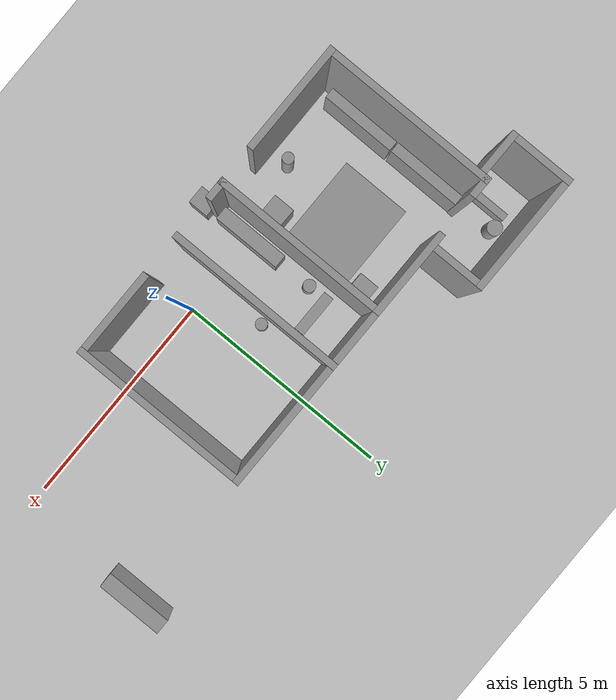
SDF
<sdf version="1.6">
 <world name="default">
  <model name="ground_plane">
   <static>1</static>
   <link name="link">
    <collision name="collision">
     <geometry><plane><normal>0 0 1</normal><size>100 100</size></plane></geometry>
     <surface><friction><ode><mu>100</mu><mu2>50</mu2></ode></friction></surface>
    </collision>
    <visual name="visual">
     <cast_shadows>0</cast_shadows>
     <geometry><plane><normal>0 0 1</normal><size>100 100</size></plane></geometry>
     <material>
      <script><uri>file://media/materials/scripts/gazebo.material</uri><name>Gazebo/Grey</name></script>
     </material>
    </visual>
   </link>
  </model>
  <model name="cma_escritorio">
   <pose>-1.8304 1.03024 0 0 -0 0</pose>
   <link name="Wall_11">
    <collision name="Wall_11_Collision">
     <geometry><box><size>2 0.15 2.5</size></box></geometry>
     <pose>0 0 1.25 0 -0 0</pose>
    </collision>
    <visual name="Wall_11_Visual">
     <pose>0 0 1.25 0 -0 0</pose>
     <geometry><box><size>2 0.15 2.5</size></box></geometry>
     <material>
      <script><uri>file://media/materials/scripts/gazebo.material</uri><name>Gazebo/Grey</name></script>
      <ambient>1 1 1 1</ambient>
     </material>
    </visual>
    <pose>-1.4 1.93 0 0 -0 3.14159</pose>
   </link>
   <link name="Wall_2">
    <collision name="Wall_2_Collision">
     <geometry><box><size>4 0.15 2.5</size></box></geometry>
     <pose>0 0 1.25 0 -0 0</pose>
    </collision>
    <visual name="Wall_2_Visual">
     <pose>0 0 1.25 0 -0 0</pose>
     <geometry><box><size>4 0.15 2.5</size></box></geometry>
     <material>
      <script><uri>file://media/materials/scripts/gazebo.material</uri><name>Gazebo/Grey</name></script>
      <ambient>1 1 1 1</ambient>
     </material>
    </visual>
    <pose>0.875 0.005 0 0 -0 1.5708</pose>
   </link>
   <link name="Wall_25">
    <collision name="Wall_25_Collision">
     <geometry><box><size>2.5 0.15 2.5</size></box></geometry>
     <pose>0 0 1.25 0 -0 0</pose>
    </collision>
    <visual name="Wall_25_Visual">
     <pose>0 0 1.25 0 -0 0</pose>
     <geometry><box><size>2.5 0.15 2.5</size></box></geometry>
     <material>
      <script><uri>file://media/materials/scripts/gazebo.material</uri><name>Gazebo/Grey</name></script>
      <ambient>1 1 1 1</ambient>
     </material>
    </visual>
    <pose>-2.55 -1.93 0 0 -0 3.14159</pose>
   </link>
   <link name="Wall_26">
    <collision name="Wall_26_Collision">
     <geometry><box><size>4 0.15 2.5</size></box></geometry>
     <pose>0 0 1.25 0 -0 0</pose>
    </collision>
    <visual name="Wall_26_Visual">
     <pose>0 0 1.25 0 -0 0</pose>
     <geometry><box><size>4 0.15 2.5</size></box></geometry>
     <material>
      <script><uri>file://media/materials/scripts/gazebo.material</uri><name>Gazebo/Grey</name></script>
      <ambient>1 1 1 1</ambient>
     </material>
    </visual>
    <pose>-3.725 -0.005 0 0 -0 1.5708</pose>
   </link>
   <link name="Wall_27">
    <collision name="Wall_27_Collision">
     <geometry><box><size>0.5 0.15 2.5</size></box></geometry>
     <pose>0 0 1.25 0 -0 0</pose>
    </collision>
    <visual name="Wall_27_Visual">
     <pose>0 0 1.25 0 -0 0</pose>
     <geometry><box><size>0.5 0.15 2.5</size></box></geometry>
     <material>
      <script><uri>file://media/materials/scripts/gazebo.material</uri><name>Gazebo/Grey</name></script>
      <ambient>1 1 1 1</ambient>
     </material>
    </visual>
    <pose>-3.55 1.92 0 0 -0 0</pose>
   </link>
   <link name="Wall_3">
    <collision name="Wall_3_Collision">
     <geometry><box><size>3 0.15 2.5</size></box></geometry>
     <pose>0 0 1.25 0 -0 0</pose>
    </collision>
    <visual name="Wall_3_Visual">
     <pose>0 0 1.25 0 -0 0</pose>
     <geometry><box><size>3 0.15 2.5</size></box></geometry>
     <material>
      <script><uri>file://media/materials/scripts/gazebo.material</uri><name>Gazebo/Grey</name></script>
      <ambient>1 1 1 1</ambient>
     </material>
    </visual>
    <pose>2.3 1.93 0 0 -0 0</pose>
   </link>
   <link name="Wall_4">
    <collision name="Wall_4_Collision">
     <geometry><box><size>4 0.15 2.5</size></box></geometry>
     <pose>0 0 1.25 0 -0 0</pose>
    </collision>
    <visual name="Wall_4_Visual">
     <pose>0 0 1.25 0 -0 0</pose>
     <geometry><box><size>4 0.15 2.5</size></box></geometry>
     <material>
      <script><uri>file://media/materials/scripts/gazebo.material</uri><name>Gazebo/Grey</name></script>
      <ambient>1 1 1 1</ambient>
     </material>
    </visual>
    <pose>3.725 0.005 0 0 0 -1.5708</pose>
   </link>
   <link name="Wall_5">
    <collision name="Wall_5_Collision">
     <geometry><box><size>2 0.15 2.5</size></box></geometry>
     <pose>0 0 1.25 0 -0 0</pose>
    </collision>
    <visual name="Wall_5_Visual">
     <pose>0 0 1.25 0 -0 0</pose>
     <geometry><box><size>2 0.15 2.5</size></box></geometry>
     <material>
      <script><uri>file://media/materials/scripts/gazebo.material</uri><name>Gazebo/Grey</name></script>
      <ambient>1 1 1 1</ambient>
     </material>
    </visual>
    <pose>2.8 -1.92 0 0 -0 3.14159</pose>
   </link>
   <link name="Wall_7">
    <collision name="Wall_7_Collision">
     <geometry><box><size>1.5 0.15 2.5</size></box></geometry>
     <pose>0 0 1.25 0 -0 0</pose>
    </collision>
    <visual name="Wall_7_Visual">
     <pose>0 0 1.25 0 -0 0</pose>
     <geometry><box><size>1.5 0.15 2.5</size></box></geometry>
     <material>
      <script><uri>file://media/materials/scripts/gazebo.material</uri><name>Gazebo/Grey</name></script>
      <ambient>1 1 1 1</ambient>
     </material>
    </visual>
    <pose>0.2 1.93 0 0 -0 3.14159</pose>
   </link>
   <link name="Wall_8">
    <collision name="Wall_8_Collision">
     <geometry><box><size>4 0.15 2.5</size></box></geometry>
     <pose>0 0 1.25 0 -0 0</pose>
    </collision>
    <visual name="Wall_8_Visual">
     <pose>0 0 1.25 0 -0 0</pose>
     <geometry><box><size>4 0.15 2.5</size></box></geometry>
     <material>
      <script><uri>file://media/materials/scripts/gazebo.material</uri><name>Gazebo/Grey</name></script>
      <ambient>1 1 1 1</ambient>
     </material>
    </visual>
    <pose>-0.475 0.005 0 0 0 -1.5708</pose>
   </link>
   <link name="Wall_9">
    <collision name="Wall_9_Collision">
     <geometry><box><size>0.5 0.15 2.5</size></box></geometry>
     <pose>0 0 1.25 0 -0 0</pose>
    </collision>
    <visual name="Wall_9_Visual">
     <pose>0 0 1.25 0 -0 0</pose>
     <geometry><box><size>0.5 0.15 2.5</size></box></geometry>
     <material>
      <script><uri>file://media/materials/scripts/gazebo.material</uri><name>Gazebo/Grey</name></script>
      <ambient>1 1 1 1</ambient>
     </material>
    </visual>
    <pose>-0.3 -1.92 0 0 -0 0</pose>
   </link>
   <static>1</static>
  </model>
  <model name="cma_banheiro">
   <pose>-5.22928 3.4871 0 0 -0 0</pose>
   <link name="Wall_0">
    <collision name="Wall_0_Collision">
     <geometry><box><size>1 0.15 2.5</size></box></geometry>
     <pose>0 0 1.25 0 -0 0</pose>
    </collision>
    <visual name="Wall_0_Visual">
     <pose>0 0 1.25 0 -0 0</pose>
     <geometry><box><size>1 0.15 2.5</size></box></geometry>
     <material>
      <script><uri>file://media/materials/scripts/gazebo.material</uri><name>Gazebo/Grey</name></script>
      <ambient>1 1 1 1</ambient>
     </material>
    </visual>
    <pose>-0.875 -0.675 0 0 -0 3.14159</pose>
   </link>
   <link name="Wall_1">
    <collision name="Wall_1_Collision">
     <geometry><box><size>1.5 0.15 2.5</size></box></geometry>
     <pose>0 0 1.25 0 -0 0</pose>
    </collision>
    <visual name="Wall_1_Visual">
     <pose>0 0 1.25 0 -0 0</pose>
     <geometry><box><size>1.5 0.15 2.5</size></box></geometry>
     <material>
      <script><uri>file://media/materials/scripts/gazebo.material</uri><name>Gazebo/Grey</name></script>
      <ambient>1 1 1 1</ambient>
     </material>
    </visual>
    <pose>-1.3 0 0 0 -0 1.5708</pose>
   </link>
   <link name="Wall_2">
    <collision name="Wall_2_Collision">
     <geometry><box><size>2.75 0.15 2.5</size></box></geometry>
     <pose>0 0 1.25 0 -0 0</pose>
    </collision>
    <visual name="Wall_2_Visual">
     <pose>0 0 1.25 0 -0 0</pose>
     <geometry><box><size>2.75 0.15 2.5</size></box></geometry>
     <material>
      <script><uri>file://media/materials/scripts/gazebo.material</uri><name>Gazebo/Grey</name></script>
      <ambient>1 1 1 1</ambient>
     </material>
    </visual>
    <pose>0 0.675 0 0 -0 0</pose>
   </link>
   <link name="Wall_4">
    <collision name="Wall_4_Collision">
     <geometry><box><size>1.25 0.15 2.5</size></box></geometry>
     <pose>0 0 1.25 0 -0 0</pose>
    </collision>
    <visual name="Wall_4_Visual">
     <pose>0 0 1.25 0 -0 0</pose>
     <geometry><box><size>1.25 0.15 2.5</size></box></geometry>
     <material>
      <script><uri>file://media/materials/scripts/gazebo.material</uri><name>Gazebo/Grey</name></script>
      <ambient>1 1 1 1</ambient>
     </material>
    </visual>
    <pose>1.3 0.125 0 0 0 -1.5708</pose>
   </link>
   <static>1</static>
  </model>
  <model name="cma_lixo_0">
   <link name="link_1">
    <pose>0.882962 1.81586 0.5 0 -0 0</pose>
    <inertial>
     <mass>0.0687644</mass>
     <inertia>
      <ixx>0.00602588</ixx>
      <ixy>0</ixy>
      <ixz>0</ixz>
      <iyy>0.00602588</iyy>
      <iyz>0</iyz>
      <izz>0.000591068</izz>
     </inertia>
    </inertial>
    <visual name="visual">
     <geometry><cylinder><radius>0.131112</radius><length>1</length></cylinder></geometry>
     <material>
      <lighting>1</lighting>
      <script><uri>file://media/materials/scripts/gazebo.material</uri><name>Gazebo/Grey</name></script>
      <ambient>0.3 0.3 0.3 1</ambient>
      <diffuse>0.7 0.7 0.7 1</diffuse>
      <specular>0.01 0.01 0.01 1</specular>
      <emissive>0 0 0 1</emissive>
     </material>
    </visual>
    <collision name="collision">
     <geometry><cylinder><radius>0.131112</radius><length>1</length></cylinder></geometry>
     <surface>
      <friction>
       <ode><mu>1</mu><mu2>1</mu2><fdir1>0 0 0</fdir1><slip1>0</slip1><slip2>0</slip2></ode>
       <torsional>
        <coefficient>1</coefficient>
        <patch_radius>0</patch_radius>
        <surface_radius>0</surface_radius>
        <use_patch_radius>1</use_patch_radius>
        <ode><slip>0</slip></ode>
       </torsional>
      </friction>
      <bounce><restitution_coefficient>0</restitution_coefficient><threshold>1e+06</threshold></bounce>
      <contact>
       <collide_without_contact>0</collide_without_contact>
       <collide_without_contact_bitmask>1</collide_without_contact_bitmask>
       <collide_bitmask>1</collide_bitmask>
       <ode>
        <soft_cfm>0</soft_cfm>
        <soft_erp>0.2</soft_erp>
        <kp>1e+13</kp>
        <kd>1</kd>
        <max_vel>0.01</max_vel>
        <min_depth>0</min_depth>
       </ode>
       <bullet>
        <split_impulse>1</split_impulse>
        <split_impulse_penetration_threshold>-0.01</split_impulse_penetration_threshold>
        <soft_cfm>0</soft_cfm>
        <soft_erp>0.2</soft_erp>
        <kp>1e+13</kp>
        <kd>1</kd>
       </bullet>
      </contact>
     </surface>
    </collision>
   </link>
   <static>0</static>
   <pose>-1.60935 -0.442731 -2e-06 0 0 -0.009777</pose>
  </model>
  <model name="cma_bau_s">
   <link name="link_1">
    <pose>0.109594 0.272293 0 0 -0 0</pose>
    <inertial>
     <mass>0.125479</mass>
     <inertia>
      <ixx>0.00641943</ixx>
      <ixy>0</ixy>
      <ixz>0</ixz>
      <iyy>0.0059754</iyy>
      <iyz>0</iyz>
      <izz>0.00422085</izz>
     </inertia>
    </inertial>
    <visual name="visual">
     <geometry><box><size>0.424964 0.472283 0.625118</size></box></geometry>
     <material>
      <lighting>1</lighting>
      <script><uri>file://media/materials/scripts/gazebo.material</uri><name>Gazebo/Grey</name></script>
      <ambient>0.3 0.3 0.3 1</ambient>
      <diffuse>0.7 0.7 0.7 1</diffuse>
      <specular>0.01 0.01 0.01 1</specular>
      <emissive>0 0 0 1</emissive>
     </material>
    </visual>
    <collision name="collision">
     <geometry><box><size>0.424964 0.472283 0.625118</size></box></geometry>
     <surface>
      <friction>
       <ode><mu>1</mu><mu2>1</mu2><fdir1>0 0 0</fdir1><slip1>0</slip1><slip2>0</slip2></ode>
       <torsional>
        <coefficient>1</coefficient>
        <patch_radius>0</patch_radius>
        <surface_radius>0</surface_radius>
        <use_patch_radius>1</use_patch_radius>
        <ode><slip>0</slip></ode>
       </torsional>
      </friction>
      <bounce><restitution_coefficient>0</restitution_coefficient><threshold>1e+06</threshold></bounce>
      <contact>
       <collide_without_contact>0</collide_without_contact>
       <collide_without_contact_bitmask>1</collide_without_contact_bitmask>
       <collide_bitmask>1</collide_bitmask>
       <ode>
        <soft_cfm>0</soft_cfm>
        <soft_erp>0.2</soft_erp>
        <kp>1e+13</kp>
        <kd>1</kd>
        <max_vel>0.01</max_vel>
        <min_depth>0</min_depth>
       </ode>
       <bullet>
        <split_impulse>1</split_impulse>
        <split_impulse_penetration_threshold>-0.01</split_impulse_penetration_threshold>
        <soft_cfm>0</soft_cfm>
        <soft_erp>0.2</soft_erp>
        <kp>1e+13</kp>
        <kd>1</kd>
       </bullet>
      </contact>
     </surface>
    </collision>
   </link>
   <static>0</static>
   <pose>-2.04311 -1.48559 0.312559 0 0 -0.000251</pose>
  </model>
  <model name="cma_cama_c_0">
   <link name="link_0">
    <pose>5e-06 -4e-06 0 0 -0 0</pose>
    <inertial>
     <mass>3.18358</mass>
     <inertia><ixx>0.934862</ixx><ixy>0</ixy><ixz>0</ixz><iyy>1.33069</iyy><iyz>0</iyz><izz>1.73496</izz></inertia>
    </inertial>
    <visual name="visual">
     <geometry><box><size>2.00394 1.58866 1</size></box></geometry>
     <material>
      <lighting>1</lighting>
      <script><uri>file://media/materials/scripts/gazebo.material</uri><name>Gazebo/Grey</name></script>
      <ambient>0.3 0.3 0.3 1</ambient>
      <diffuse>0.7 0.7 0.7 1</diffuse>
      <specular>0.01 0.01 0.01 1</specular>
      <emissive>0 0 0 1</emissive>
     </material>
    </visual>
    <collision name="collision">
     <geometry><box><size>2.00394 1.58866 1</size></box></geometry>
     <surface>
      <friction>
       <ode><mu>1</mu><mu2>1</mu2><fdir1>0 0 0</fdir1><slip1>0</slip1><slip2>0</slip2></ode>
       <torsional>
        <coefficient>1</coefficient>
        <patch_radius>0</patch_radius>
        <surface_radius>0</surface_radius>
        <use_patch_radius>1</use_patch_radius>
        <ode><slip>0</slip></ode>
       </torsional>
      </friction>
      <bounce><restitution_coefficient>0</restitution_coefficient><threshold>1e+06</threshold></bounce>
      <contact>
       <collide_without_contact>0</collide_without_contact>
       <collide_without_contact_bitmask>1</collide_without_contact_bitmask>
       <collide_bitmask>1</collide_bitmask>
       <ode>
        <soft_cfm>0</soft_cfm>
        <soft_erp>0.2</soft_erp>
        <kp>1e+13</kp>
        <kd>1</kd>
        <max_vel>0.01</max_vel>
        <min_depth>0</min_depth>
       </ode>
       <bullet>
        <split_impulse>1</split_impulse>
        <split_impulse_penetration_threshold>-0.01</split_impulse_penetration_threshold>
        <soft_cfm>0</soft_cfm>
        <soft_erp>0.2</soft_erp>
        <kp>1e+13</kp>
        <kd>1</kd>
       </bullet>
      </contact>
     </surface>
    </collision>
   </link>
   <static>0</static>
   <pose>-3.38238 1.38787 0.5 0 0 -2e-06</pose>
  </model>
  <model name="cma_bau_s_0">
   <link name="link_1">
    <pose>0.109594 0.272293 0 0 -0 0</pose>
    <inertial>
     <mass>0.125479</mass>
     <inertia>
      <ixx>0.00641943</ixx>
      <ixy>0</ixy>
      <ixz>0</ixz>
      <iyy>0.0059754</iyy>
      <iyz>0</iyz>
      <izz>0.00422085</izz>
     </inertia>
    </inertial>
    <visual name="visual">
     <geometry><box><size>0.424964 0.472283 0.625118</size></box></geometry>
     <material>
      <lighting>1</lighting>
      <script><uri>file://media/materials/scripts/gazebo.material</uri><name>Gazebo/Grey</name></script>
      <ambient>0.3 0.3 0.3 1</ambient>
      <diffuse>0.7 0.7 0.7 1</diffuse>
      <specular>0.01 0.01 0.01 1</specular>
      <emissive>0 0 0 1</emissive>
     </material>
    </visual>
    <collision name="collision">
     <geometry><box><size>0.424964 0.472283 0.625118</size></box></geometry>
     <surface>
      <friction>
       <ode><mu>1</mu><mu2>1</mu2><fdir1>0 0 0</fdir1><slip1>0</slip1><slip2>0</slip2></ode>
       <torsional>
        <coefficient>1</coefficient>
        <patch_radius>0</patch_radius>
        <surface_radius>0</surface_radius>
        <use_patch_radius>1</use_patch_radius>
        <ode><slip>0</slip></ode>
       </torsional>
      </friction>
      <bounce><restitution_coefficient>0</restitution_coefficient><threshold>1e+06</threshold></bounce>
      <contact>
       <collide_without_contact>0</collide_without_contact>
       <collide_without_contact_bitmask>1</collide_without_contact_bitmask>
       <collide_bitmask>1</collide_bitmask>
       <ode>
        <soft_cfm>0</soft_cfm>
        <soft_erp>0.2</soft_erp>
        <kp>1e+13</kp>
        <kd>1</kd>
        <max_vel>0.01</max_vel>
        <min_depth>0</min_depth>
       </ode>
       <bullet>
        <split_impulse>1</split_impulse>
        <split_impulse_penetration_threshold>-0.01</split_impulse_penetration_threshold>
        <soft_cfm>0</soft_cfm>
        <soft_erp>0.2</soft_erp>
        <kp>1e+13</kp>
        <kd>1</kd>
       </bullet>
      </contact>
     </surface>
    </collision>
   </link>
   <static>0</static>
   <pose>-2.76549 2.24311 0.312559 3e-06 -0 -0.002092</pose>
  </model>
  <model name="cma_gaveteiro_1">
   <link name="link_0">
    <pose>-0 4e-06 0 0 -0 0</pose>
    <inertial>
     <mass>0.245086</mass>
     <inertia>
      <ixx>0.025418</ixx>
      <ixy>0</ixy>
      <ixz>0</ixz>
      <iyy>0.0254411</iyy>
      <iyz>0</iyz>
      <izz>0.0100113</izz>
     </inertia>
    </inertial>
    <visual name="visual">
     <geometry><box><size>0.495657 0.494491 1</size></box></geometry>
     <material>
      <lighting>1</lighting>
      <script><uri>file://media/materials/scripts/gazebo.material</uri><name>Gazebo/Grey</name></script>
      <ambient>0.3 0.3 0.3 1</ambient>
      <diffuse>0.7 0.7 0.7 1</diffuse>
      <specular>0.01 0.01 0.01 1</specular>
      <emissive>0 0 0 1</emissive>
     </material>
    </visual>
    <collision name="collision">
     <geometry><box><size>0.495657 0.494491 1</size></box></geometry>
     <surface>
      <friction>
       <ode><mu>1</mu><mu2>1</mu2><fdir1>0 0 0</fdir1><slip1>0</slip1><slip2>0</slip2></ode>
       <torsional>
        <coefficient>1</coefficient>
        <patch_radius>0</patch_radius>
        <surface_radius>0</surface_radius>
        <use_patch_radius>1</use_patch_radius>
        <ode><slip>0</slip></ode>
       </torsional>
      </friction>
      <bounce><restitution_coefficient>0</restitution_coefficient><threshold>1e+06</threshold></bounce>
      <contact>
       <collide_without_contact>0</collide_without_contact>
       <collide_without_contact_bitmask>1</collide_without_contact_bitmask>
       <collide_bitmask>1</collide_bitmask>
       <ode>
        <soft_cfm>0</soft_cfm>
        <soft_erp>0.2</soft_erp>
        <kp>1e+13</kp>
        <kd>1</kd>
        <max_vel>0.01</max_vel>
        <min_depth>0</min_depth>
       </ode>
       <bullet>
        <split_impulse>1</split_impulse>
        <split_impulse_penetration_threshold>-0.01</split_impulse_penetration_threshold>
        <soft_cfm>0</soft_cfm>
        <soft_erp>0.2</soft_erp>
        <kp>1e+13</kp>
        <kd>1</kd>
       </bullet>
      </contact>
     </surface>
    </collision>
   </link>
   <static>0</static>
   <pose>-2.68858 0.131642 0.500001 -5e-06 -0 -0.001534</pose>
  </model>
  <model name="cma_armario_6">
   <link name="link_0">
    <pose>1.32157 0.885178 0.5 0 -0 0</pose>
    <inertial>
     <mass>0.402376</mass>
     <inertia>
      <ixx>0.0353686</ixx>
      <ixy>0</ixy>
      <ixz>0</ixz>
      <iyy>0.132616</iyy>
      <iyz>0</iyz>
      <izz>0.100922</izz>
     </inertia>
    </inertial>
    <visual name="visual">
     <geometry><box><size>1.71877 0.234069 1</size></box></geometry>
     <material>
      <lighting>1</lighting>
      <script><uri>file://media/materials/scripts/gazebo.material</uri><name>Gazebo/Grey</name></script>
      <ambient>0.3 0.3 0.3 1</ambient>
      <diffuse>0.7 0.7 0.7 1</diffuse>
      <specular>0.01 0.01 0.01 1</specular>
      <emissive>0 0 0 1</emissive>
     </material>
    </visual>
    <collision name="collision">
     <geometry><box><size>1.71877 0.234069 1</size></box></geometry>
     <surface>
      <friction>
       <ode><mu>1</mu><mu2>1</mu2><fdir1>0 0 0</fdir1><slip1>0</slip1><slip2>0</slip2></ode>
       <torsional>
        <coefficient>1</coefficient>
        <patch_radius>0</patch_radius>
        <surface_radius>0</surface_radius>
        <use_patch_radius>1</use_patch_radius>
        <ode><slip>0</slip></ode>
       </torsional>
      </friction>
      <bounce><restitution_coefficient>0</restitution_coefficient><threshold>1e+06</threshold></bounce>
      <contact>
       <collide_without_contact>0</collide_without_contact>
       <collide_without_contact_bitmask>1</collide_without_contact_bitmask>
       <collide_bitmask>1</collide_bitmask>
       <ode>
        <soft_cfm>0</soft_cfm>
        <soft_erp>0.2</soft_erp>
        <kp>1e+13</kp>
        <kd>1</kd>
        <max_vel>0.01</max_vel>
        <min_depth>0</min_depth>
       </ode>
       <bullet>
        <split_impulse>1</split_impulse>
        <split_impulse_penetration_threshold>-0.01</split_impulse_penetration_threshold>
        <soft_cfm>0</soft_cfm>
        <soft_erp>0.2</soft_erp>
        <kp>1e+13</kp>
        <kd>1</kd>
       </bullet>
      </contact>
     </surface>
    </collision>
   </link>
   <static>0</static>
   <pose>-4.38103 0.68863 -2e-06 2e-06 -0 1.56776</pose>
  </model>
  <model name="cma_armario_7">
   <link name="link_0">
    <pose>1.32157 0.885178 0.5 0 -0 0</pose>
    <inertial>
     <mass>0.402376</mass>
     <inertia>
      <ixx>0.0353686</ixx>
      <ixy>0</ixy>
      <ixz>0</ixz>
      <iyy>0.132616</iyy>
      <iyz>0</iyz>
      <izz>0.100922</izz>
     </inertia>
    </inertial>
    <visual name="visual">
     <geometry><box><size>1.71877 0.234069 1</size></box></geometry>
     <material>
      <lighting>1</lighting>
      <script><uri>file://media/materials/scripts/gazebo.material</uri><name>Gazebo/Grey</name></script>
      <ambient>0.3 0.3 0.3 1</ambient>
      <diffuse>0.7 0.7 0.7 1</diffuse>
      <specular>0.01 0.01 0.01 1</specular>
      <emissive>0 0 0 1</emissive>
     </material>
    </visual>
    <collision name="collision">
     <geometry><box><size>1.71877 0.234069 1</size></box></geometry>
     <surface>
      <friction>
       <ode><mu>1</mu><mu2>1</mu2><fdir1>0 0 0</fdir1><slip1>0</slip1><slip2>0</slip2></ode>
       <torsional>
        <coefficient>1</coefficient>
        <patch_radius>0</patch_radius>
        <surface_radius>0</surface_radius>
        <use_patch_radius>1</use_patch_radius>
        <ode><slip>0</slip></ode>
       </torsional>
      </friction>
      <bounce><restitution_coefficient>0</restitution_coefficient><threshold>1e+06</threshold></bounce>
      <contact>
       <collide_without_contact>0</collide_without_contact>
       <collide_without_contact_bitmask>1</collide_without_contact_bitmask>
       <collide_bitmask>1</collide_bitmask>
       <ode>
        <soft_cfm>0</soft_cfm>
        <soft_erp>0.2</soft_erp>
        <kp>1e+13</kp>
        <kd>1</kd>
        <max_vel>0.01</max_vel>
        <min_depth>0</min_depth>
       </ode>
       <bullet>
        <split_impulse>1</split_impulse>
        <split_impulse_penetration_threshold>-0.01</split_impulse_penetration_threshold>
        <soft_cfm>0</soft_cfm>
        <soft_erp>0.2</soft_erp>
        <kp>1e+13</kp>
        <kd>1</kd>
       </bullet>
      </contact>
     </surface>
    </collision>
   </link>
   <static>0</static>
   <pose>-4.38716 -1.06802 -2e-06 2e-06 -0 1.56482</pose>
  </model>
  <model name="cma_lixo_3">
   <link name="link_1">
    <pose>0.882962 1.81586 0.5 0 -0 0</pose>
    <inertial>
     <mass>0.0687644</mass>
     <inertia>
      <ixx>0.00602588</ixx>
      <ixy>0</ixy>
      <ixz>0</ixz>
      <iyy>0.00602588</iyy>
      <iyz>0</iyz>
      <izz>0.000591068</izz>
     </inertia>
    </inertial>
    <visual name="visual">
     <geometry><cylinder><radius>0.131112</radius><length>1</length></cylinder></geometry>
     <material>
      <lighting>1</lighting>
      <script><uri>file://media/materials/scripts/gazebo.material</uri><name>Gazebo/Grey</name></script>
      <ambient>0.3 0.3 0.3 1</ambient>
      <diffuse>0.7 0.7 0.7 1</diffuse>
      <specular>0.01 0.01 0.01 1</specular>
      <emissive>0 0 0 1</emissive>
     </material>
    </visual>
    <collision name="collision">
     <geometry><cylinder><radius>0.131112</radius><length>1</length></cylinder></geometry>
     <surface>
      <friction>
       <ode><mu>1</mu><mu2>1</mu2><fdir1>0 0 0</fdir1><slip1>0</slip1><slip2>0</slip2></ode>
       <torsional>
        <coefficient>1</coefficient>
        <patch_radius>0</patch_radius>
        <surface_radius>0</surface_radius>
        <use_patch_radius>1</use_patch_radius>
        <ode><slip>0</slip></ode>
       </torsional>
      </friction>
      <bounce><restitution_coefficient>0</restitution_coefficient><threshold>1e+06</threshold></bounce>
      <contact>
       <collide_without_contact>0</collide_without_contact>
       <collide_without_contact_bitmask>1</collide_without_contact_bitmask>
       <collide_bitmask>1</collide_bitmask>
       <ode>
        <soft_cfm>0</soft_cfm>
        <soft_erp>0.2</soft_erp>
        <kp>1e+13</kp>
        <kd>1</kd>
        <max_vel>0.01</max_vel>
        <min_depth>0</min_depth>
       </ode>
       <bullet>
        <split_impulse>1</split_impulse>
        <split_impulse_penetration_threshold>-0.01</split_impulse_penetration_threshold>
        <soft_cfm>0</soft_cfm>
        <soft_erp>0.2</soft_erp>
        <kp>1e+13</kp>
        <kd>1</kd>
       </bullet>
      </contact>
     </surface>
    </collision>
   </link>
   <static>0</static>
   <pose>-4.57495 -2.209 -2e-06 0 -0 0</pose>
  </model>
  <model name="cma_armario_coz_150x20cm">
   <link name="link_1">
    <pose>7.18686 2.75247 0.5 0 -0 0</pose>
    <inertial>
     <mass>0.531573</mass>
     <inertia>
      <ixx>0.147651</ixx>
      <ixy>0</ixy>
      <ixz>0</ixz>
      <iyy>0.0496628</iyy>
      <iyz>0</iyz>
      <izz>0.108718</izz>
     </inertia>
    </inertial>
    <visual name="visual">
     <geometry><box><size>0.348023 1.52746 1</size></box></geometry>
     <material>
      <lighting>1</lighting>
      <script><uri>file://media/materials/scripts/gazebo.material</uri><name>Gazebo/Grey</name></script>
      <ambient>0.3 0.3 0.3 1</ambient>
      <diffuse>0.7 0.7 0.7 1</diffuse>
      <specular>0.01 0.01 0.01 1</specular>
      <emissive>0 0 0 1</emissive>
     </material>
    </visual>
    <collision name="collision">
     <geometry><box><size>0.348023 1.52746 1</size></box></geometry>
     <surface>
      <friction>
       <ode><mu>1</mu><mu2>1</mu2><fdir1>0 0 0</fdir1><slip1>0</slip1><slip2>0</slip2></ode>
       <torsional>
        <coefficient>1</coefficient>
        <patch_radius>0</patch_radius>
        <surface_radius>0</surface_radius>
        <use_patch_radius>1</use_patch_radius>
        <ode><slip>0</slip></ode>
       </torsional>
      </friction>
      <bounce><restitution_coefficient>0</restitution_coefficient><threshold>1e+06</threshold></bounce>
      <contact>
       <collide_without_contact>0</collide_without_contact>
       <collide_without_contact_bitmask>1</collide_without_contact_bitmask>
       <collide_bitmask>1</collide_bitmask>
       <ode>
        <soft_cfm>0</soft_cfm>
        <soft_erp>0.2</soft_erp>
        <kp>1e+13</kp>
        <kd>1</kd>
        <max_vel>0.01</max_vel>
        <min_depth>0</min_depth>
       </ode>
       <bullet>
        <split_impulse>1</split_impulse>
        <split_impulse_penetration_threshold>-0.01</split_impulse_penetration_threshold>
        <soft_cfm>0</soft_cfm>
        <soft_erp>0.2</soft_erp>
        <kp>1e+13</kp>
        <kd>1</kd>
       </bullet>
      </contact>
     </surface>
    </collision>
   </link>
   <static>0</static>
   <pose>-1.79432 0.264776 0 0 0 -2e-06</pose>
  </model>
  <model name="cma_bans_a1">
   <link name="link_0">
    <pose>-1e-06 -0 0 0 -0 0</pose>
    <inertial>
     <mass>0.425312</mass>
     <inertia>
      <ixx>0.116443</ixx>
      <ixy>0</ixy>
      <ixz>0</ixz>
      <iyy>0.0293972</iyy>
      <iyz>0</iyz>
      <izz>0.0939016</izz>
     </inertia>
    </inertial>
    <visual name="visual">
     <geometry><box><size>0.310997 1.59771 0.855983</size></box></geometry>
     <material>
      <lighting>1</lighting>
      <script><uri>file://media/materials/scripts/gazebo.material</uri><name>Gazebo/Grey</name></script>
      <ambient>0.3 0.3 0.3 1</ambient>
      <diffuse>0.7 0.7 0.7 1</diffuse>
      <specular>0.01 0.01 0.01 1</specular>
      <emissive>0 0 0 1</emissive>
     </material>
    </visual>
    <collision name="collision">
     <geometry><box><size>0.310997 1.59771 0.855983</size></box></geometry>
     <surface>
      <friction>
       <ode><mu>1</mu><mu2>1</mu2><fdir1>0 0 0</fdir1><slip1>0</slip1><slip2>0</slip2></ode>
       <torsional>
        <coefficient>1</coefficient>
        <patch_radius>0</patch_radius>
        <surface_radius>0</surface_radius>
        <use_patch_radius>1</use_patch_radius>
        <ode><slip>0</slip></ode>
       </torsional>
      </friction>
      <bounce><restitution_coefficient>0</restitution_coefficient><threshold>1e+06</threshold></bounce>
      <contact>
       <collide_without_contact>0</collide_without_contact>
       <collide_without_contact_bitmask>1</collide_without_contact_bitmask>
       <collide_bitmask>1</collide_bitmask>
       <ode>
        <soft_cfm>0</soft_cfm>
        <soft_erp>0.2</soft_erp>
        <kp>1e+13</kp>
        <kd>1</kd>
        <max_vel>0.01</max_vel>
        <min_depth>0</min_depth>
       </ode>
       <bullet>
        <split_impulse>1</split_impulse>
        <split_impulse_penetration_threshold>-0.01</split_impulse_penetration_threshold>
        <soft_cfm>0</soft_cfm>
        <soft_erp>0.2</soft_erp>
        <kp>1e+13</kp>
        <kd>1</kd>
       </bullet>
      </contact>
     </surface>
    </collision>
   </link>
   <static>0</static>
   <pose>-1.9587 0.037939 0.427986 -6e-06 6e-06 -0.000314</pose>
  </model>
  <model name="cma_bans_b">
   <link name="link_1">
    <pose>-2e-06 4e-06 0 0 -0 0</pose>
    <inertial>
     <mass>0.0821228</mass>
     <inertia>
      <ixx>0.00118272</ixx>
      <ixy>0</ixy>
      <ixz>0</ixz>
      <iyy>0.00761891</iyy>
      <iyz>0</iyz>
      <izz>0.00725096</izz>
     </inertia>
    </inertial>
    <visual name="visual">
     <geometry><box><size>1 0.243984 0.336591</size></box></geometry>
     <material>
      <lighting>1</lighting>
      <script><uri>file://media/materials/scripts/gazebo.material</uri><name>Gazebo/Grey</name></script>
      <ambient>0.3 0.3 0.3 1</ambient>
      <diffuse>0.7 0.7 0.7 1</diffuse>
      <specular>0.01 0.01 0.01 1</specular>
      <emissive>0 0 0 1</emissive>
     </material>
    </visual>
    <collision name="collision">
     <geometry><box><size>1 0.243984 0.336591</size></box></geometry>
     <surface>
      <friction>
       <ode><mu>1</mu><mu2>1</mu2><fdir1>0 0 0</fdir1><slip1>0</slip1><slip2>0</slip2></ode>
       <torsional>
        <coefficient>1</coefficient>
        <patch_radius>0</patch_radius>
        <surface_radius>0</surface_radius>
        <use_patch_radius>1</use_patch_radius>
        <ode><slip>0</slip></ode>
       </torsional>
      </friction>
      <bounce><restitution_coefficient>0</restitution_coefficient><threshold>1e+06</threshold></bounce>
      <contact>
       <collide_without_contact>0</collide_without_contact>
       <collide_without_contact_bitmask>1</collide_without_contact_bitmask>
       <collide_bitmask>1</collide_bitmask>
       <ode>
        <soft_cfm>0</soft_cfm>
        <soft_erp>0.2</soft_erp>
        <kp>1e+13</kp>
        <kd>1</kd>
        <max_vel>0.01</max_vel>
        <min_depth>0</min_depth>
       </ode>
       <bullet>
        <split_impulse>1</split_impulse>
        <split_impulse_penetration_threshold>-0.01</split_impulse_penetration_threshold>
        <soft_cfm>0</soft_cfm>
        <soft_erp>0.2</soft_erp>
        <kp>1e+13</kp>
        <kd>1</kd>
       </bullet>
      </contact>
     </surface>
    </collision>
   </link>
   <static>0</static>
   <pose>-1.59754 2.06496 0.168295 1e-06 -0 0</pose>
  </model>
  <model name="cma_bans_v">
   <link name="link_2">
    <pose>3e-06 -4e-06 0 0 -0 0</pose>
    <inertial>
     <mass>0.051889</mass>
     <inertia>
      <ixx>0.00203611</ixx>
      <ixy>0</ixy>
      <ixz>0</ixz>
      <iyy>0.00203611</iyy>
      <iyz>0</iyz>
      <izz>0.000525548</izz>
     </inertia>
    </inertial>
    <visual name="visual">
     <geometry><cylinder><radius>0.142329</radius><length>0.640396</length></cylinder></geometry>
     <material>
      <lighting>1</lighting>
      <script><uri>file://media/materials/scripts/gazebo.material</uri><name>Gazebo/Grey</name></script>
      <ambient>0.3 0.3 0.3 1</ambient>
      <diffuse>0.7 0.7 0.7 1</diffuse>
      <specular>0.01 0.01 0.01 1</specular>
      <emissive>0 0 0 1</emissive>
     </material>
    </visual>
    <collision name="collision">
     <geometry><cylinder><radius>0.142329</radius><length>0.640396</length></cylinder></geometry>
     <surface>
      <friction>
       <ode><mu>1</mu><mu2>1</mu2><fdir1>0 0 0</fdir1><slip1>0</slip1><slip2>0</slip2></ode>
       <torsional>
        <coefficient>1</coefficient>
        <patch_radius>0</patch_radius>
        <surface_radius>0</surface_radius>
        <use_patch_radius>1</use_patch_radius>
        <ode><slip>0</slip></ode>
       </torsional>
      </friction>
      <bounce><restitution_coefficient>0</restitution_coefficient><threshold>1e+06</threshold></bounce>
      <contact>
       <collide_without_contact>0</collide_without_contact>
       <collide_without_contact_bitmask>1</collide_without_contact_bitmask>
       <collide_bitmask>1</collide_bitmask>
       <ode>
        <soft_cfm>0</soft_cfm>
        <soft_erp>0.2</soft_erp>
        <kp>1e+13</kp>
        <kd>1</kd>
        <max_vel>0.01</max_vel>
        <min_depth>0</min_depth>
       </ode>
       <bullet>
        <split_impulse>1</split_impulse>
        <split_impulse_penetration_threshold>-0.01</split_impulse_penetration_threshold>
        <soft_cfm>0</soft_cfm>
        <soft_erp>0.2</soft_erp>
        <kp>1e+13</kp>
        <kd>1</kd>
       </bullet>
      </contact>
     </surface>
    </collision>
   </link>
   <static>0</static>
   <pose>-1.97511 1.61732 0.320189 0 -0 2e-06</pose>
  </model>
  <model name="cma_banr_a1">
   <link name="link_0">
    <pose>1e-06 -3e-06 0 0 -0 0</pose>
    <inertial>
     <mass>0.105007</mass>
     <inertia>
      <ixx>0.00955791</ixx>
      <ixy>0</ixy>
      <ixz>0</ixz>
      <iyy>0.00253403</iyy>
      <iyz>0</iyz>
      <izz>0.00798233</izz>
     </inertia>
    </inertial>
    <visual name="visual">
     <geometry><box><size>0.234016 0.925978 0.484577</size></box></geometry>
     <material>
      <lighting>1</lighting>
      <script><uri>file://media/materials/scripts/gazebo.material</uri><name>Gazebo/Grey</name></script>
      <ambient>0.3 0.3 0.3 1</ambient>
      <diffuse>0.7 0.7 0.7 1</diffuse>
      <specular>0.01 0.01 0.01 1</specular>
      <emissive>0 0 0 1</emissive>
     </material>
    </visual>
    <collision name="collision">
     <geometry><box><size>0.234016 0.925978 0.484577</size></box></geometry>
     <surface>
      <friction>
       <ode><mu>1</mu><mu2>1</mu2><fdir1>0 0 0</fdir1><slip1>0</slip1><slip2>0</slip2></ode>
       <torsional>
        <coefficient>1</coefficient>
        <patch_radius>0</patch_radius>
        <surface_radius>0</surface_radius>
        <use_patch_radius>1</use_patch_radius>
        <ode><slip>0</slip></ode>
       </torsional>
      </friction>
      <bounce><restitution_coefficient>0</restitution_coefficient><threshold>1e+06</threshold></bounce>
      <contact>
       <collide_without_contact>0</collide_without_contact>
       <collide_without_contact_bitmask>1</collide_without_contact_bitmask>
       <collide_bitmask>1</collide_bitmask>
       <ode>
        <soft_cfm>0</soft_cfm>
        <soft_erp>0.2</soft_erp>
        <kp>1e+13</kp>
        <kd>1</kd>
        <max_vel>0.01</max_vel>
        <min_depth>0</min_depth>
       </ode>
       <bullet>
        <split_impulse>1</split_impulse>
        <split_impulse_penetration_threshold>-0.01</split_impulse_penetration_threshold>
        <soft_cfm>0</soft_cfm>
        <soft_erp>0.2</soft_erp>
        <kp>1e+13</kp>
        <kd>1</kd>
       </bullet>
      </contact>
     </surface>
    </collision>
   </link>
   <static>0</static>
   <pose>-4.1759 3.52745 0.242289 -0 1e-06 0.00025</pose>
  </model>
  <model name="cma_banr_v">
   <link name="link_1">
    <pose>1e-06 -0 0 0 -0 0</pose>
    <inertial>
     <mass>0.067197</mass>
     <inertia>
      <ixx>0.00232477</ixx>
      <ixy>0</ixy>
      <ixz>0</ixz>
      <iyy>0.00232477</iyy>
      <iyz>0</iyz>
      <izz>0.000986998</izz>
     </inertia>
    </inertial>
    <visual name="visual">
     <geometry><cylinder><radius>0.171393</radius><length>0.571861</length></cylinder></geometry>
     <material>
      <lighting>1</lighting>
      <script><uri>file://media/materials/scripts/gazebo.material</uri><name>Gazebo/Grey</name></script>
      <ambient>0.3 0.3 0.3 1</ambient>
      <diffuse>0.7 0.7 0.7 1</diffuse>
      <specular>0.01 0.01 0.01 1</specular>
      <emissive>0 0 0 1</emissive>
     </material>
    </visual>
    <collision name="collision">
     <geometry><cylinder><radius>0.171393</radius><length>0.571861</length></cylinder></geometry>
     <surface>
      <friction>
       <ode><mu>1</mu><mu2>1</mu2><fdir1>0 0 0</fdir1><slip1>0</slip1><slip2>0</slip2></ode>
       <torsional>
        <coefficient>1</coefficient>
        <patch_radius>0</patch_radius>
        <surface_radius>0</surface_radius>
        <use_patch_radius>1</use_patch_radius>
        <ode><slip>0</slip></ode>
       </torsional>
      </friction>
      <bounce><restitution_coefficient>0</restitution_coefficient><threshold>1e+06</threshold></bounce>
      <contact>
       <collide_without_contact>0</collide_without_contact>
       <collide_without_contact_bitmask>1</collide_without_contact_bitmask>
       <collide_bitmask>1</collide_bitmask>
       <ode>
        <soft_cfm>0</soft_cfm>
        <soft_erp>0.2</soft_erp>
        <kp>1e+13</kp>
        <kd>1</kd>
        <max_vel>0.01</max_vel>
        <min_depth>0</min_depth>
       </ode>
       <bullet>
        <split_impulse>1</split_impulse>
        <split_impulse_penetration_threshold>-0.01</split_impulse_penetration_threshold>
        <soft_cfm>0</soft_cfm>
        <soft_erp>0.2</soft_erp>
        <kp>1e+13</kp>
        <kd>1</kd>
       </bullet>
      </contact>
     </surface>
    </collision>
   </link>
   <static>0</static>
   <pose>-5.39836 3.83737 0.28593 0 -0 0</pose>
  </model>
  <model name="cma_banr_b">
   <link name="link_2">
    <pose>3e-06 -4e-06 0 0 -0 0</pose>
    <inertial>
     <mass>0.057205</mass>
     <inertia>
      <ixx>0.00406892</ixx>
      <ixy>0</ixy>
      <ixz>0</ixz>
      <iyy>0.000891374</iyy>
      <iyz>0</iyz>
      <izz>0.00346274</izz>
     </inertia>
    </inertial>
    <visual name="visual">
     <geometry><box><size>0.172948 0.834542 0.396321</size></box></geometry>
     <material>
      <lighting>1</lighting>
      <script><uri>file://media/materials/scripts/gazebo.material</uri><name>Gazebo/Grey</name></script>
      <ambient>0.3 0.3 0.3 1</ambient>
      <diffuse>0.7 0.7 0.7 1</diffuse>
      <specular>0.01 0.01 0.01 1</specular>
      <emissive>0 0 0 1</emissive>
     </material>
    </visual>
    <collision name="collision">
     <geometry><box><size>0.172948 0.834542 0.396321</size></box></geometry>
     <surface>
      <friction>
       <ode><mu>1</mu><mu2>1</mu2><fdir1>0 0 0</fdir1><slip1>0</slip1><slip2>0</slip2></ode>
       <torsional>
        <coefficient>1</coefficient>
        <patch_radius>0</patch_radius>
        <surface_radius>0</surface_radius>
        <use_patch_radius>1</use_patch_radius>
        <ode><slip>0</slip></ode>
       </torsional>
      </friction>
      <bounce><restitution_coefficient>0</restitution_coefficient><threshold>1e+06</threshold></bounce>
      <contact>
       <collide_without_contact>0</collide_without_contact>
       <collide_without_contact_bitmask>1</collide_without_contact_bitmask>
       <collide_bitmask>1</collide_bitmask>
       <ode>
        <soft_cfm>0</soft_cfm>
        <soft_erp>0.2</soft_erp>
        <kp>1e+13</kp>
        <kd>1</kd>
        <max_vel>0.01</max_vel>
        <min_depth>0</min_depth>
       </ode>
       <bullet>
        <split_impulse>1</split_impulse>
        <split_impulse_penetration_threshold>-0.01</split_impulse_penetration_threshold>
        <soft_cfm>0</soft_cfm>
        <soft_erp>0.2</soft_erp>
        <kp>1e+13</kp>
        <kd>1</kd>
       </bullet>
      </contact>
     </surface>
    </collision>
   </link>
   <static>0</static>
   <pose>-5.74778 3.47189 0.19816 0 0 -0.002946</pose>
  </model>
 </world>
</sdf>
